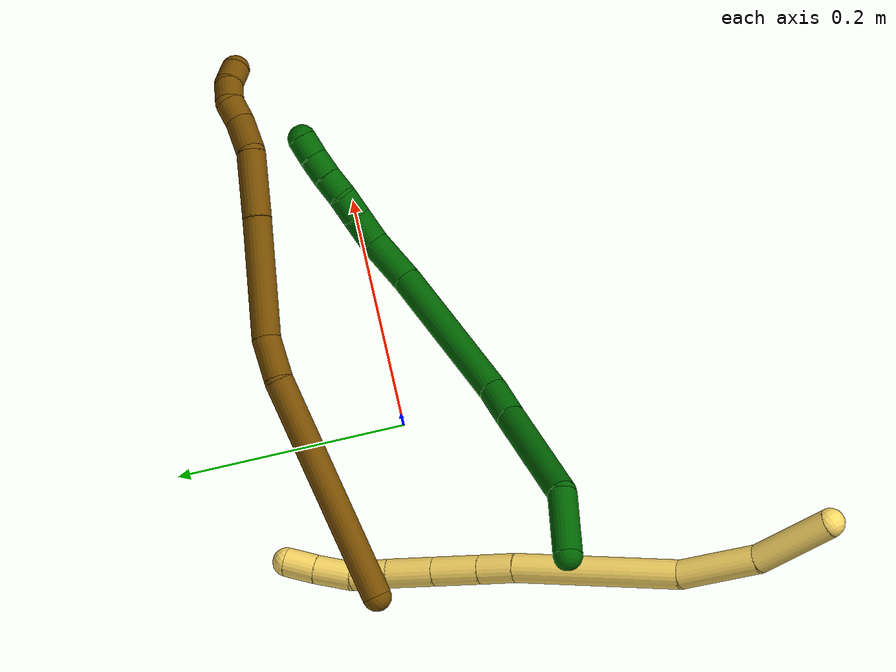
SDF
<sdf version="1.7">
 <world name="default">
  <model name="5">
   <static>0</static>
   <link name="5">
    <collision name="collision-cylinder-e_1_1_4">
     <pose>-0.008028 0.03285 -0.013775 -1.96787 -0.221677 0.331636</pose>
     <geometry><cylinder><radius>0.0125</radius><length>0.073029</length></cylinder></geometry>
     <surface>
      <friction><ode><mu>1.16</mu><mu2>1.16</mu2><slip1>0</slip1><slip2>0</slip2></ode></friction>
      <contact><ode><kp>1e+06</kp><kd>1</kd><max_vel>0</max_vel><min_depth>0.001</min_depth></ode></contact>
     </surface>
    </collision>
    <visual name="visual-cylinder-e_1_1_4">
     <pose>-0.008028 0.03285 -0.013775 -1.96787 -0.221677 0.331636</pose>
     <geometry><cylinder><radius>0.0125</radius><length>0.073029</length></cylinder></geometry>
     <material><ambient>1 0.858824 0.4 1</ambient></material>
    </visual>
    <collision name="collision-cylinder-e_2_4_5">
     <pose>-0.018952 0.094826 -0.047772 -2.17767 -0.081466 0.155506</pose>
     <geometry><cylinder><radius>0.0125</radius><length>0.071151</length></cylinder></geometry>
     <surface>
      <friction><ode><mu>1.16</mu><mu2>1.16</mu2><slip1>0</slip1><slip2>0</slip2></ode></friction>
      <contact><ode><kp>1e+06</kp><kd>1</kd><max_vel>0</max_vel><min_depth>0.001</min_depth></ode></contact>
     </surface>
    </collision>
    <visual name="visual-cylinder-e_2_4_5">
     <pose>-0.018952 0.094826 -0.047772 -2.17767 -0.081466 0.155506</pose>
     <geometry><cylinder><radius>0.0125</radius><length>0.071151</length></cylinder></geometry>
     <material><ambient>1 0.858824 0.4 1</ambient></material>
    </visual>
    <collision name="collision-cylinder-e_3_5_6">
     <pose>-0.018709 0.17489 -0.120969 -2.3758 0.042673 -0.105864</pose>
     <geometry><cylinder><radius>0.0125</radius><length>0.14712</length></cylinder></geometry>
     <surface>
      <friction><ode><mu>1.16</mu><mu2>1.16</mu2><slip1>0</slip1><slip2>0</slip2></ode></friction>
      <contact><ode><kp>1e+06</kp><kd>1</kd><max_vel>0</max_vel><min_depth>0.001</min_depth></ode></contact>
     </surface>
    </collision>
    <visual name="visual-cylinder-e_3_5_6">
     <pose>-0.018709 0.17489 -0.120969 -2.3758 0.042673 -0.105864</pose>
     <geometry><cylinder><radius>0.0125</radius><length>0.14712</length></cylinder></geometry>
     <material><ambient>1 0.858824 0.4 1</ambient></material>
    </visual>
    <collision name="collision-cylinder-e_4_6_7">
     <pose>-0.015591 0.237722 -0.184615 -2.302 -0.00126 0.002823</pose>
     <geometry><cylinder><radius>0.0125</radius><length>0.031956</length></cylinder></geometry>
     <surface>
      <friction><ode><mu>1.16</mu><mu2>1.16</mu2><slip1>0</slip1><slip2>0</slip2></ode></friction>
      <contact><ode><kp>1e+06</kp><kd>1</kd><max_vel>0</max_vel><min_depth>0.001</min_depth></ode></contact>
     </surface>
    </collision>
    <visual name="visual-cylinder-e_4_6_7">
     <pose>-0.015591 0.237722 -0.184615 -2.302 -0.00126 0.002823</pose>
     <geometry><cylinder><radius>0.0125</radius><length>0.031956</length></cylinder></geometry>
     <material><ambient>1 0.858824 0.4 1</ambient></material>
    </visual>
    <collision name="collision-cylinder-e_5_7_8">
     <pose>-0.015196 0.265155 -0.209189 -2.30073 0.019902 -0.044509</pose>
     <geometry><cylinder><radius>0.0125</radius><length>0.041713</length></cylinder></geometry>
     <surface>
      <friction><ode><mu>1.16</mu><mu2>1.16</mu2><slip1>0</slip1><slip2>0</slip2></ode></friction>
      <contact><ode><kp>1e+06</kp><kd>1</kd><max_vel>0</max_vel><min_depth>0.001</min_depth></ode></contact>
     </surface>
    </collision>
    <visual name="visual-cylinder-e_5_7_8">
     <pose>-0.015196 0.265155 -0.209189 -2.30073 0.019902 -0.044509</pose>
     <geometry><cylinder><radius>0.0125</radius><length>0.041713</length></cylinder></geometry>
     <material><ambient>1 0.858824 0.4 1</ambient></material>
    </visual>
    <collision name="collision-cylinder-e_6_8_9">
     <pose>-0.014299 0.296391 -0.237096 -2.29922 0.022904 -0.051115</pose>
     <geometry><cylinder><radius>0.0125</radius><length>0.042078</length></cylinder></geometry>
     <surface>
      <friction><ode><mu>1.16</mu><mu2>1.16</mu2><slip1>0</slip1><slip2>0</slip2></ode></friction>
      <contact><ode><kp>1e+06</kp><kd>1</kd><max_vel>0</max_vel><min_depth>0.001</min_depth></ode></contact>
     </surface>
    </collision>
    <visual name="visual-cylinder-e_6_8_9">
     <pose>-0.014299 0.296391 -0.237096 -2.29922 0.022904 -0.051115</pose>
     <geometry><cylinder><radius>0.0125</radius><length>0.042078</length></cylinder></geometry>
     <material><ambient>1 0.858824 0.4 1</ambient></material>
    </visual>
    <collision name="collision-cylinder-e_7_9_10">
     <pose>-0.012382 0.324798 -0.261441 -2.25381 0.087317 -0.183218</pose>
     <geometry><cylinder><radius>0.0125</radius><length>0.032902</length></cylinder></geometry>
     <surface>
      <friction><ode><mu>1.16</mu><mu2>1.16</mu2><slip1>0</slip1><slip2>0</slip2></ode></friction>
      <contact><ode><kp>1e+06</kp><kd>1</kd><max_vel>0</max_vel><min_depth>0.001</min_depth></ode></contact>
     </surface>
    </collision>
    <visual name="visual-cylinder-e_7_9_10">
     <pose>-0.012382 0.324798 -0.261441 -2.25381 0.087317 -0.183218</pose>
     <geometry><cylinder><radius>0.0125</radius><length>0.032902</length></cylinder></geometry>
     <material><ambient>1 0.858824 0.4 1</ambient></material>
    </visual>
    <collision name="collision-cylinder-e_8_10_11">
     <pose>-0.008293 0.347276 -0.284572 -2.48939 0.163502 -0.475405</pose>
     <geometry><cylinder><radius>0.0125</radius><length>0.032616</length></cylinder></geometry>
     <surface>
      <friction><ode><mu>1.16</mu><mu2>1.16</mu2><slip1>0</slip1><slip2>0</slip2></ode></friction>
      <contact><ode><kp>1e+06</kp><kd>1</kd><max_vel>0</max_vel><min_depth>0.001</min_depth></ode></contact>
     </surface>
    </collision>
    <visual name="visual-cylinder-e_8_10_11">
     <pose>-0.008293 0.347276 -0.284572 -2.48939 0.163502 -0.475405</pose>
     <geometry><cylinder><radius>0.0125</radius><length>0.032616</length></cylinder></geometry>
     <material><ambient>1 0.858824 0.4 1</ambient></material>
    </visual>
    <collision name="collision-cylinder-e_9_11_2">
     <pose>-0.002994 0.364576 -0.308514 -2.54755 0.194032 -0.615717</pose>
     <geometry><cylinder><radius>0.0125</radius><length>0.027435</length></cylinder></geometry>
     <surface>
      <friction><ode><mu>1.16</mu><mu2>1.16</mu2><slip1>0</slip1><slip2>0</slip2></ode></friction>
      <contact><ode><kp>1e+06</kp><kd>1</kd><max_vel>0</max_vel><min_depth>0.001</min_depth></ode></contact>
     </surface>
    </collision>
    <visual name="visual-cylinder-e_9_11_2">
     <pose>-0.002994 0.364576 -0.308514 -2.54755 0.194032 -0.615717</pose>
     <geometry><cylinder><radius>0.0125</radius><length>0.027435</length></cylinder></geometry>
     <material><ambient>1 0.858824 0.4 1</ambient></material>
    </visual>
    <collision name="collision-sphere-2">
     <pose>-0.000349 0.37211 -0.319669 0 -0 0</pose>
     <geometry><sphere><radius>0.0125</radius></sphere></geometry>
     <surface>
      <friction><ode><mu>1.16</mu><mu2>1.16</mu2><slip1>0</slip1><slip2>0</slip2></ode></friction>
      <contact><ode><kp>1e+06</kp><kd>1</kd><max_vel>0</max_vel><min_depth>0.001</min_depth></ode></contact>
     </surface>
    </collision>
    <visual name="visual-sphere-2">
     <pose>-0.000349 0.37211 -0.319669 0 -0 0</pose>
     <geometry><sphere><radius>0.0125</radius></sphere></geometry>
     <material><ambient>1 0.858824 0.4 1</ambient></material>
    </visual>
    <collision name="collision-sphere-11">
     <pose>-0.005639 0.357042 -0.29736 0 -0 0</pose>
     <geometry><sphere><radius>0.0125</radius></sphere></geometry>
     <surface>
      <friction><ode><mu>1.16</mu><mu2>1.16</mu2><slip1>0</slip1><slip2>0</slip2></ode></friction>
      <contact><ode><kp>1e+06</kp><kd>1</kd><max_vel>0</max_vel><min_depth>0.001</min_depth></ode></contact>
     </surface>
    </collision>
    <visual name="visual-sphere-11">
     <pose>-0.005639 0.357042 -0.29736 0 -0 0</pose>
     <geometry><sphere><radius>0.0125</radius></sphere></geometry>
     <material><ambient>1 0.858824 0.4 1</ambient></material>
    </visual>
    <collision name="collision-sphere-10">
     <pose>-0.010948 0.33751 -0.271784 0 -0 0</pose>
     <geometry><sphere><radius>0.0125</radius></sphere></geometry>
     <surface>
      <friction><ode><mu>1.16</mu><mu2>1.16</mu2><slip1>0</slip1><slip2>0</slip2></ode></friction>
      <contact><ode><kp>1e+06</kp><kd>1</kd><max_vel>0</max_vel><min_depth>0.001</min_depth></ode></contact>
     </surface>
    </collision>
    <visual name="visual-sphere-10">
     <pose>-0.010948 0.33751 -0.271784 0 -0 0</pose>
     <geometry><sphere><radius>0.0125</radius></sphere></geometry>
     <material><ambient>1 0.858824 0.4 1</ambient></material>
    </visual>
    <collision name="collision-sphere-9">
     <pose>-0.013817 0.312087 -0.251098 0 -0 0</pose>
     <geometry><sphere><radius>0.0125</radius></sphere></geometry>
     <surface>
      <friction><ode><mu>1.16</mu><mu2>1.16</mu2><slip1>0</slip1><slip2>0</slip2></ode></friction>
      <contact><ode><kp>1e+06</kp><kd>1</kd><max_vel>0</max_vel><min_depth>0.001</min_depth></ode></contact>
     </surface>
    </collision>
    <visual name="visual-sphere-9">
     <pose>-0.013817 0.312087 -0.251098 0 -0 0</pose>
     <geometry><sphere><radius>0.0125</radius></sphere></geometry>
     <material><ambient>1 0.858824 0.4 1</ambient></material>
    </visual>
    <collision name="collision-sphere-4">
     <pose>-0.016057 0.0657 -0.027551 0 -0 0</pose>
     <geometry><sphere><radius>0.0125</radius></sphere></geometry>
     <surface>
      <friction><ode><mu>1.16</mu><mu2>1.16</mu2><slip1>0</slip1><slip2>0</slip2></ode></friction>
      <contact><ode><kp>1e+06</kp><kd>1</kd><max_vel>0</max_vel><min_depth>0.001</min_depth></ode></contact>
     </surface>
    </collision>
    <visual name="visual-sphere-4">
     <pose>-0.016057 0.0657 -0.027551 0 -0 0</pose>
     <geometry><sphere><radius>0.0125</radius></sphere></geometry>
     <material><ambient>1 0.858824 0.4 1</ambient></material>
    </visual>
    <collision name="collision-sphere-1">
     <geometry><sphere><radius>0.0125</radius></sphere></geometry>
     <surface>
      <friction><ode><mu>1.16</mu><mu2>1.16</mu2><slip1>0</slip1><slip2>0</slip2></ode></friction>
      <contact><ode><kp>1e+06</kp><kd>1</kd><max_vel>0</max_vel><min_depth>0.001</min_depth></ode></contact>
     </surface>
    </collision>
    <visual name="visual-sphere-1">
     <geometry><sphere><radius>0.0125</radius></sphere></geometry>
     <material><ambient>1 0.858824 0.4 1</ambient></material>
    </visual>
    <collision name="collision-sphere-8">
     <pose>-0.014781 0.280695 -0.223094 0 -0 0</pose>
     <geometry><sphere><radius>0.0125</radius></sphere></geometry>
     <surface>
      <friction><ode><mu>1.16</mu><mu2>1.16</mu2><slip1>0</slip1><slip2>0</slip2></ode></friction>
      <contact><ode><kp>1e+06</kp><kd>1</kd><max_vel>0</max_vel><min_depth>0.001</min_depth></ode></contact>
     </surface>
    </collision>
    <visual name="visual-sphere-8">
     <pose>-0.014781 0.280695 -0.223094 0 -0 0</pose>
     <geometry><sphere><radius>0.0125</radius></sphere></geometry>
     <material><ambient>1 0.858824 0.4 1</ambient></material>
    </visual>
    <collision name="collision-sphere-5">
     <pose>-0.021847 0.123952 -0.067993 0 -0 0</pose>
     <geometry><sphere><radius>0.0125</radius></sphere></geometry>
     <surface>
      <friction><ode><mu>1.16</mu><mu2>1.16</mu2><slip1>0</slip1><slip2>0</slip2></ode></friction>
      <contact><ode><kp>1e+06</kp><kd>1</kd><max_vel>0</max_vel><min_depth>0.001</min_depth></ode></contact>
     </surface>
    </collision>
    <visual name="visual-sphere-5">
     <pose>-0.021847 0.123952 -0.067993 0 -0 0</pose>
     <geometry><sphere><radius>0.0125</radius></sphere></geometry>
     <material><ambient>1 0.858824 0.4 1</ambient></material>
    </visual>
    <collision name="collision-sphere-6">
     <pose>-0.015571 0.225829 -0.173946 0 -0 0</pose>
     <geometry><sphere><radius>0.0125</radius></sphere></geometry>
     <surface>
      <friction><ode><mu>1.16</mu><mu2>1.16</mu2><slip1>0</slip1><slip2>0</slip2></ode></friction>
      <contact><ode><kp>1e+06</kp><kd>1</kd><max_vel>0</max_vel><min_depth>0.001</min_depth></ode></contact>
     </surface>
    </collision>
    <visual name="visual-sphere-6">
     <pose>-0.015571 0.225829 -0.173946 0 -0 0</pose>
     <geometry><sphere><radius>0.0125</radius></sphere></geometry>
     <material><ambient>1 0.858824 0.4 1</ambient></material>
    </visual>
    <collision name="collision-sphere-7">
     <pose>-0.015611 0.249616 -0.195285 0 -0 0</pose>
     <geometry><sphere><radius>0.0125</radius></sphere></geometry>
     <surface>
      <friction><ode><mu>1.16</mu><mu2>1.16</mu2><slip1>0</slip1><slip2>0</slip2></ode></friction>
      <contact><ode><kp>1e+06</kp><kd>1</kd><max_vel>0</max_vel><min_depth>0.001</min_depth></ode></contact>
     </surface>
    </collision>
    <visual name="visual-sphere-7">
     <pose>-0.015611 0.249616 -0.195285 0 -0 0</pose>
     <geometry><sphere><radius>0.0125</radius></sphere></geometry>
     <material><ambient>1 0.858824 0.4 1</ambient></material>
    </visual>
    <inertial>
     <pose>-0.014362 0.19604 -0.146303 0 -0 0</pose>
     <mass>0.5</mass>
     <inertia>
      <ixx>0.000346</ixx>
      <ixy>0</ixy>
      <ixz>0</ixz>
      <iyy>-0.00023</iyy>
      <iyz>0</iyz>
      <izz>-0.000296</izz>
     </inertia>
    </inertial>
   </link>
   <pose>-0.16813 -0.324337 0.228222 -0.33734 -1.11833 0.83566</pose>
  </model>
  <model name="6">
   <static>0</static>
   <link name="6">
    <collision name="collision-cylinder-e_1_1_4">
     <pose>-0.00026 3e-06 -0.029575 -3.14148 -0.008802 3.11629</pose>
     <geometry><cylinder><radius>0.0125</radius><length>0.059151</length></cylinder></geometry>
     <surface>
      <friction><ode><mu>1.16</mu><mu2>1.16</mu2><slip1>0</slip1><slip2>0</slip2></ode></friction>
      <contact><ode><kp>1e+06</kp><kd>1</kd><max_vel>0</max_vel><min_depth>0.001</min_depth></ode></contact>
     </surface>
    </collision>
    <visual name="visual-cylinder-e_1_1_4">
     <pose>-0.00026 3e-06 -0.029575 -3.14148 -0.008802 3.11629</pose>
     <geometry><cylinder><radius>0.0125</radius><length>0.059151</length></cylinder></geometry>
     <material><ambient>0 0.392157 0.003922 1</ambient></material>
    </visual>
    <collision name="collision-cylinder-e_2_4_5">
     <pose>-0.009474 0.026631 -0.108475 -2.64665 -0.158386 0.608692</pose>
     <geometry><cylinder><radius>0.0125</radius><length>0.113526</length></cylinder></geometry>
     <surface>
      <friction><ode><mu>1.16</mu><mu2>1.16</mu2><slip1>0</slip1><slip2>0</slip2></ode></friction>
      <contact><ode><kp>1e+06</kp><kd>1</kd><max_vel>0</max_vel><min_depth>0.001</min_depth></ode></contact>
     </surface>
    </collision>
    <visual name="visual-cylinder-e_2_4_5">
     <pose>-0.009474 0.026631 -0.108475 -2.64665 -0.158386 0.608692</pose>
     <geometry><cylinder><radius>0.0125</radius><length>0.113526</length></cylinder></geometry>
     <material><ambient>0 0.392157 0.003922 1</ambient></material>
    </visual>
    <collision name="collision-cylinder-e_3_5_6">
     <pose>-0.017571 0.060288 -0.173488 -2.72013 0.049696 -0.231338</pose>
     <geometry><cylinder><radius>0.0125</radius><length>0.034427</length></cylinder></geometry>
     <surface>
      <friction><ode><mu>1.16</mu><mu2>1.16</mu2><slip1>0</slip1><slip2>0</slip2></ode></friction>
      <contact><ode><kp>1e+06</kp><kd>1</kd><max_vel>0</max_vel><min_depth>0.001</min_depth></ode></contact>
     </surface>
    </collision>
    <visual name="visual-cylinder-e_3_5_6">
     <pose>-0.017571 0.060288 -0.173488 -2.72013 0.049696 -0.231338</pose>
     <geometry><cylinder><radius>0.0125</radius><length>0.034427</length></cylinder></geometry>
     <material><ambient>0 0.392157 0.003922 1</ambient></material>
    </visual>
    <collision name="collision-cylinder-e_4_6_7">
     <pose>-0.003067 0.097309 -0.24897 -2.67673 0.201281 -0.806457</pose>
     <geometry><cylinder><radius>0.0125</radius><length>0.13654</length></cylinder></geometry>
     <surface>
      <friction><ode><mu>1.16</mu><mu2>1.16</mu2><slip1>0</slip1><slip2>0</slip2></ode></friction>
      <contact><ode><kp>1e+06</kp><kd>1</kd><max_vel>0</max_vel><min_depth>0.001</min_depth></ode></contact>
     </surface>
    </collision>
    <visual name="visual-cylinder-e_4_6_7">
     <pose>-0.003067 0.097309 -0.24897 -2.67673 0.201281 -0.806457</pose>
     <geometry><cylinder><radius>0.0125</radius><length>0.13654</length></cylinder></geometry>
     <material><ambient>0 0.392157 0.003922 1</ambient></material>
    </visual>
    <collision name="collision-cylinder-e_5_7_8">
     <pose>0.019015 0.13703 -0.327487 -2.6622 0.380178 -1.33389</pose>
     <geometry><cylinder><radius>0.0125</radius><length>0.045452</length></cylinder></geometry>
     <surface>
      <friction><ode><mu>1.16</mu><mu2>1.16</mu2><slip1>0</slip1><slip2>0</slip2></ode></friction>
      <contact><ode><kp>1e+06</kp><kd>1</kd><max_vel>0</max_vel><min_depth>0.001</min_depth></ode></contact>
     </surface>
    </collision>
    <visual name="visual-cylinder-e_5_7_8">
     <pose>0.019015 0.13703 -0.327487 -2.6622 0.380178 -1.33389</pose>
     <geometry><cylinder><radius>0.0125</radius><length>0.045452</length></cylinder></geometry>
     <material><ambient>0 0.392157 0.003922 1</ambient></material>
    </visual>
    <collision name="collision-cylinder-e_6_8_9">
     <pose>0.037383 0.148692 -0.355535 -2.93764 0.806674 -2.67087</pose>
     <geometry><cylinder><radius>0.0125</radius><length>0.027522</length></cylinder></geometry>
     <surface>
      <friction><ode><mu>1.16</mu><mu2>1.16</mu2><slip1>0</slip1><slip2>0</slip2></ode></friction>
      <contact><ode><kp>1e+06</kp><kd>1</kd><max_vel>0</max_vel><min_depth>0.001</min_depth></ode></contact>
     </surface>
    </collision>
    <visual name="visual-cylinder-e_6_8_9">
     <pose>0.037383 0.148692 -0.355535 -2.93764 0.806674 -2.67087</pose>
     <geometry><cylinder><radius>0.0125</radius><length>0.027522</length></cylinder></geometry>
     <material><ambient>0 0.392157 0.003922 1</ambient></material>
    </visual>
    <collision name="collision-cylinder-e_7_9_10">
     <pose>0.055209 0.15215 -0.372283 -2.93842 0.805487 -2.67188</pose>
     <geometry><cylinder><radius>0.0125</radius><length>0.021883</length></cylinder></geometry>
     <surface>
      <friction><ode><mu>1.16</mu><mu2>1.16</mu2><slip1>0</slip1><slip2>0</slip2></ode></friction>
      <contact><ode><kp>1e+06</kp><kd>1</kd><max_vel>0</max_vel><min_depth>0.001</min_depth></ode></contact>
     </surface>
    </collision>
    <visual name="visual-cylinder-e_7_9_10">
     <pose>0.055209 0.15215 -0.372283 -2.93842 0.805487 -2.67188</pose>
     <geometry><cylinder><radius>0.0125</radius><length>0.021883</length></cylinder></geometry>
     <material><ambient>0 0.392157 0.003922 1</ambient></material>
    </visual>
    <collision name="collision-cylinder-e_8_10_11">
     <pose>0.06867 0.156954 -0.387793 -2.75682 0.568246 -1.96505</pose>
     <geometry><cylinder><radius>0.0125</radius><length>0.0207</length></cylinder></geometry>
     <surface>
      <friction><ode><mu>1.16</mu><mu2>1.16</mu2><slip1>0</slip1><slip2>0</slip2></ode></friction>
      <contact><ode><kp>1e+06</kp><kd>1</kd><max_vel>0</max_vel><min_depth>0.001</min_depth></ode></contact>
     </surface>
    </collision>
    <visual name="visual-cylinder-e_8_10_11">
     <pose>0.06867 0.156954 -0.387793 -2.75682 0.568246 -1.96505</pose>
     <geometry><cylinder><radius>0.0125</radius><length>0.0207</length></cylinder></geometry>
     <material><ambient>0 0.392157 0.003922 1</ambient></material>
    </visual>
    <collision name="collision-cylinder-e_9_11_12">
     <pose>0.0793 0.163126 -0.404488 -2.81696 0.508189 -2.01645</pose>
     <geometry><cylinder><radius>0.0125</radius><length>0.020797</length></cylinder></geometry>
     <surface>
      <friction><ode><mu>1.16</mu><mu2>1.16</mu2><slip1>0</slip1><slip2>0</slip2></ode></friction>
      <contact><ode><kp>1e+06</kp><kd>1</kd><max_vel>0</max_vel><min_depth>0.001</min_depth></ode></contact>
     </surface>
    </collision>
    <visual name="visual-cylinder-e_9_11_12">
     <pose>0.0793 0.163126 -0.404488 -2.81696 0.508189 -2.01645</pose>
     <geometry><cylinder><radius>0.0125</radius><length>0.020797</length></cylinder></geometry>
     <material><ambient>0 0.392157 0.003922 1</ambient></material>
    </visual>
    <collision name="collision-cylinder-e_10_12_2">
     <pose>0.089086 0.168373 -0.421593 -2.87174 0.492286 -2.15083</pose>
     <geometry><cylinder><radius>0.0125</radius><length>0.020002</length></cylinder></geometry>
     <surface>
      <friction><ode><mu>1.16</mu><mu2>1.16</mu2><slip1>0</slip1><slip2>0</slip2></ode></friction>
      <contact><ode><kp>1e+06</kp><kd>1</kd><max_vel>0</max_vel><min_depth>0.001</min_depth></ode></contact>
     </surface>
    </collision>
    <visual name="visual-cylinder-e_10_12_2">
     <pose>0.089086 0.168373 -0.421593 -2.87174 0.492286 -2.15083</pose>
     <geometry><cylinder><radius>0.0125</radius><length>0.020002</length></cylinder></geometry>
     <material><ambient>0 0.392157 0.003922 1</ambient></material>
    </visual>
    <collision name="collision-sphere-2">
     <pose>0.093813 0.170722 -0.430087 0 -0 0</pose>
     <geometry><sphere><radius>0.0125</radius></sphere></geometry>
     <surface>
      <friction><ode><mu>1.16</mu><mu2>1.16</mu2><slip1>0</slip1><slip2>0</slip2></ode></friction>
      <contact><ode><kp>1e+06</kp><kd>1</kd><max_vel>0</max_vel><min_depth>0.001</min_depth></ode></contact>
     </surface>
    </collision>
    <visual name="visual-sphere-2">
     <pose>0.093813 0.170722 -0.430087 0 -0 0</pose>
     <geometry><sphere><radius>0.0125</radius></sphere></geometry>
     <material><ambient>0 0.392157 0.003922 1</ambient></material>
    </visual>
    <collision name="collision-sphere-12">
     <pose>0.08436 0.166023 -0.413098 0 -0 0</pose>
     <geometry><sphere><radius>0.0125</radius></sphere></geometry>
     <surface>
      <friction><ode><mu>1.16</mu><mu2>1.16</mu2><slip1>0</slip1><slip2>0</slip2></ode></friction>
      <contact><ode><kp>1e+06</kp><kd>1</kd><max_vel>0</max_vel><min_depth>0.001</min_depth></ode></contact>
     </surface>
    </collision>
    <visual name="visual-sphere-12">
     <pose>0.08436 0.166023 -0.413098 0 -0 0</pose>
     <geometry><sphere><radius>0.0125</radius></sphere></geometry>
     <material><ambient>0 0.392157 0.003922 1</ambient></material>
    </visual>
    <collision name="collision-sphere-11">
     <pose>0.07424 0.160228 -0.395878 0 -0 0</pose>
     <geometry><sphere><radius>0.0125</radius></sphere></geometry>
     <surface>
      <friction><ode><mu>1.16</mu><mu2>1.16</mu2><slip1>0</slip1><slip2>0</slip2></ode></friction>
      <contact><ode><kp>1e+06</kp><kd>1</kd><max_vel>0</max_vel><min_depth>0.001</min_depth></ode></contact>
     </surface>
    </collision>
    <visual name="visual-sphere-11">
     <pose>0.07424 0.160228 -0.395878 0 -0 0</pose>
     <geometry><sphere><radius>0.0125</radius></sphere></geometry>
     <material><ambient>0 0.392157 0.003922 1</ambient></material>
    </visual>
    <collision name="collision-sphere-10">
     <pose>0.0631 0.15368 -0.379707 0 -0 0</pose>
     <geometry><sphere><radius>0.0125</radius></sphere></geometry>
     <surface>
      <friction><ode><mu>1.16</mu><mu2>1.16</mu2><slip1>0</slip1><slip2>0</slip2></ode></friction>
      <contact><ode><kp>1e+06</kp><kd>1</kd><max_vel>0</max_vel><min_depth>0.001</min_depth></ode></contact>
     </surface>
    </collision>
    <visual name="visual-sphere-10">
     <pose>0.0631 0.15368 -0.379707 0 -0 0</pose>
     <geometry><sphere><radius>0.0125</radius></sphere></geometry>
     <material><ambient>0 0.392157 0.003922 1</ambient></material>
    </visual>
    <collision name="collision-sphere-9">
     <pose>0.047318 0.150621 -0.364859 0 -0 0</pose>
     <geometry><sphere><radius>0.0125</radius></sphere></geometry>
     <surface>
      <friction><ode><mu>1.16</mu><mu2>1.16</mu2><slip1>0</slip1><slip2>0</slip2></ode></friction>
      <contact><ode><kp>1e+06</kp><kd>1</kd><max_vel>0</max_vel><min_depth>0.001</min_depth></ode></contact>
     </surface>
    </collision>
    <visual name="visual-sphere-9">
     <pose>0.047318 0.150621 -0.364859 0 -0 0</pose>
     <geometry><sphere><radius>0.0125</radius></sphere></geometry>
     <material><ambient>0 0.392157 0.003922 1</ambient></material>
    </visual>
    <collision name="collision-sphere-4">
     <pose>-0.000521 7e-06 -0.059149 0 -0 0</pose>
     <geometry><sphere><radius>0.0125</radius></sphere></geometry>
     <surface>
      <friction><ode><mu>1.16</mu><mu2>1.16</mu2><slip1>0</slip1><slip2>0</slip2></ode></friction>
      <contact><ode><kp>1e+06</kp><kd>1</kd><max_vel>0</max_vel><min_depth>0.001</min_depth></ode></contact>
     </surface>
    </collision>
    <visual name="visual-sphere-4">
     <pose>-0.000521 7e-06 -0.059149 0 -0 0</pose>
     <geometry><sphere><radius>0.0125</radius></sphere></geometry>
     <material><ambient>0 0.392157 0.003922 1</ambient></material>
    </visual>
    <collision name="collision-sphere-1">
     <geometry><sphere><radius>0.0125</radius></sphere></geometry>
     <surface>
      <friction><ode><mu>1.16</mu><mu2>1.16</mu2><slip1>0</slip1><slip2>0</slip2></ode></friction>
      <contact><ode><kp>1e+06</kp><kd>1</kd><max_vel>0</max_vel><min_depth>0.001</min_depth></ode></contact>
     </surface>
    </collision>
    <visual name="visual-sphere-1">
     <geometry><sphere><radius>0.0125</radius></sphere></geometry>
     <material><ambient>0 0.392157 0.003922 1</ambient></material>
    </visual>
    <collision name="collision-sphere-8">
     <pose>0.027448 0.146764 -0.346211 0 -0 0</pose>
     <geometry><sphere><radius>0.0125</radius></sphere></geometry>
     <surface>
      <friction><ode><mu>1.16</mu><mu2>1.16</mu2><slip1>0</slip1><slip2>0</slip2></ode></friction>
      <contact><ode><kp>1e+06</kp><kd>1</kd><max_vel>0</max_vel><min_depth>0.001</min_depth></ode></contact>
     </surface>
    </collision>
    <visual name="visual-sphere-8">
     <pose>0.027448 0.146764 -0.346211 0 -0 0</pose>
     <geometry><sphere><radius>0.0125</radius></sphere></geometry>
     <material><ambient>0 0.392157 0.003922 1</ambient></material>
    </visual>
    <collision name="collision-sphere-5">
     <pose>-0.018426 0.053254 -0.1578 0 -0 0</pose>
     <geometry><sphere><radius>0.0125</radius></sphere></geometry>
     <surface>
      <friction><ode><mu>1.16</mu><mu2>1.16</mu2><slip1>0</slip1><slip2>0</slip2></ode></friction>
      <contact><ode><kp>1e+06</kp><kd>1</kd><max_vel>0</max_vel><min_depth>0.001</min_depth></ode></contact>
     </surface>
    </collision>
    <visual name="visual-sphere-5">
     <pose>-0.018426 0.053254 -0.1578 0 -0 0</pose>
     <geometry><sphere><radius>0.0125</radius></sphere></geometry>
     <material><ambient>0 0.392157 0.003922 1</ambient></material>
    </visual>
    <collision name="collision-sphere-6">
     <pose>-0.016716 0.067321 -0.189176 0 -0 0</pose>
     <geometry><sphere><radius>0.0125</radius></sphere></geometry>
     <surface>
      <friction><ode><mu>1.16</mu><mu2>1.16</mu2><slip1>0</slip1><slip2>0</slip2></ode></friction>
      <contact><ode><kp>1e+06</kp><kd>1</kd><max_vel>0</max_vel><min_depth>0.001</min_depth></ode></contact>
     </surface>
    </collision>
    <visual name="visual-sphere-6">
     <pose>-0.016716 0.067321 -0.189176 0 -0 0</pose>
     <geometry><sphere><radius>0.0125</radius></sphere></geometry>
     <material><ambient>0 0.392157 0.003922 1</ambient></material>
    </visual>
    <collision name="collision-sphere-7">
     <pose>0.010581 0.127296 -0.308763 0 -0 0</pose>
     <geometry><sphere><radius>0.0125</radius></sphere></geometry>
     <surface>
      <friction><ode><mu>1.16</mu><mu2>1.16</mu2><slip1>0</slip1><slip2>0</slip2></ode></friction>
      <contact><ode><kp>1e+06</kp><kd>1</kd><max_vel>0</max_vel><min_depth>0.001</min_depth></ode></contact>
     </surface>
    </collision>
    <visual name="visual-sphere-7">
     <pose>0.010581 0.127296 -0.308763 0 -0 0</pose>
     <geometry><sphere><radius>0.0125</radius></sphere></geometry>
     <material><ambient>0 0.392157 0.003922 1</ambient></material>
    </visual>
    <inertial>
     <pose>0.011678 0.08409 -0.22344 0 -0 0</pose>
     <mass>0.5</mass>
     <inertia>
      <ixx>0.000143</ixx>
      <ixy>0</ixy>
      <ixz>0</ixz>
      <iyy>-0.000268</iyy>
      <iyz>0</iyz>
      <izz>-0.000229</izz>
     </inertia>
    </inertial>
   </link>
   <pose>-0.14589 -0.108465 0.210157 -0.822585 -0.877728 0.811462</pose>
  </model>
  <model name="12">
   <static>0</static>
   <link name="12">
    <collision name="collision-cylinder-e_1_1_4">
     <pose>0.061047 -0.015701 -0.078752 2.9448 0.650005 2.57162</pose>
     <geometry><cylinder><radius>0.0125</radius><length>0.201743</length></cylinder></geometry>
     <surface>
      <friction><ode><mu>1.16</mu><mu2>1.16</mu2><slip1>0</slip1><slip2>0</slip2></ode></friction>
      <contact><ode><kp>1e+06</kp><kd>1</kd><max_vel>0</max_vel><min_depth>0.001</min_depth></ode></contact>
     </surface>
    </collision>
    <visual name="visual-cylinder-e_1_1_4">
     <pose>0.061047 -0.015701 -0.078752 2.9448 0.650005 2.57162</pose>
     <geometry><cylinder><radius>0.0125</radius><length>0.201743</length></cylinder></geometry>
     <material><ambient>0.466667 0.301961 0 1</ambient></material>
    </visual>
    <collision name="collision-cylinder-e_2_4_5">
     <pose>0.136902 -0.036599 -0.16888 2.71302 0.86946 2.26507</pose>
     <geometry><cylinder><radius>0.0125</radius><length>0.038768</length></cylinder></geometry>
     <surface>
      <friction><ode><mu>1.16</mu><mu2>1.16</mu2><slip1>0</slip1><slip2>0</slip2></ode></friction>
      <contact><ode><kp>1e+06</kp><kd>1</kd><max_vel>0</max_vel><min_depth>0.001</min_depth></ode></contact>
     </surface>
    </collision>
    <visual name="visual-cylinder-e_2_4_5">
     <pose>0.136902 -0.036599 -0.16888 2.71302 0.86946 2.26507</pose>
     <geometry><cylinder><radius>0.0125</radius><length>0.038768</length></cylinder></geometry>
     <material><ambient>0.466667 0.301961 0 1</ambient></material>
    </visual>
    <collision name="collision-cylinder-e_3_5_6">
     <pose>0.195962 -0.043556 -0.208776 3.07999 0.997435 3.02856</pose>
     <geometry><cylinder><radius>0.0125</radius><length>0.105349</length></cylinder></geometry>
     <surface>
      <friction><ode><mu>1.16</mu><mu2>1.16</mu2><slip1>0</slip1><slip2>0</slip2></ode></friction>
      <contact><ode><kp>1e+06</kp><kd>1</kd><max_vel>0</max_vel><min_depth>0.001</min_depth></ode></contact>
     </surface>
    </collision>
    <visual name="visual-cylinder-e_3_5_6">
     <pose>0.195962 -0.043556 -0.208776 3.07999 0.997435 3.02856</pose>
     <geometry><cylinder><radius>0.0125</radius><length>0.105349</length></cylinder></geometry>
     <material><ambient>0.466667 0.301961 0 1</ambient></material>
    </visual>
    <collision name="collision-cylinder-e_4_6_7">
     <pose>0.265218 -0.047669 -0.252838 2.99129 1.00956 2.87072</pose>
     <geometry><cylinder><radius>0.0125</radius><length>0.059072</length></cylinder></geometry>
     <surface>
      <friction><ode><mu>1.16</mu><mu2>1.16</mu2><slip1>0</slip1><slip2>0</slip2></ode></friction>
      <contact><ode><kp>1e+06</kp><kd>1</kd><max_vel>0</max_vel><min_depth>0.001</min_depth></ode></contact>
     </surface>
    </collision>
    <visual name="visual-cylinder-e_4_6_7">
     <pose>0.265218 -0.047669 -0.252838 2.99129 1.00956 2.87072</pose>
     <geometry><cylinder><radius>0.0125</radius><length>0.059072</length></cylinder></geometry>
     <material><ambient>0.466667 0.301961 0 1</ambient></material>
    </visual>
    <collision name="collision-cylinder-e_5_7_8">
     <pose>0.303403 -0.058187 -0.275707 2.30208 0.876696 1.61993</pose>
     <geometry><cylinder><radius>0.0125</radius><length>0.034295</length></cylinder></geometry>
     <surface>
      <friction><ode><mu>1.16</mu><mu2>1.16</mu2><slip1>0</slip1><slip2>0</slip2></ode></friction>
      <contact><ode><kp>1e+06</kp><kd>1</kd><max_vel>0</max_vel><min_depth>0.001</min_depth></ode></contact>
     </surface>
    </collision>
    <visual name="visual-cylinder-e_5_7_8">
     <pose>0.303403 -0.058187 -0.275707 2.30208 0.876696 1.61993</pose>
     <geometry><cylinder><radius>0.0125</radius><length>0.034295</length></cylinder></geometry>
     <material><ambient>0.466667 0.301961 0 1</ambient></material>
    </visual>
    <collision name="collision-cylinder-e_6_8_9">
     <pose>0.323147 -0.070244 -0.289876 2.62455 0.694943 1.88023</pose>
     <geometry><cylinder><radius>0.0125</radius><length>0.020502</length></cylinder></geometry>
     <surface>
      <friction><ode><mu>1.16</mu><mu2>1.16</mu2><slip1>0</slip1><slip2>0</slip2></ode></friction>
      <contact><ode><kp>1e+06</kp><kd>1</kd><max_vel>0</max_vel><min_depth>0.001</min_depth></ode></contact>
     </surface>
    </collision>
    <visual name="visual-cylinder-e_6_8_9">
     <pose>0.323147 -0.070244 -0.289876 2.62455 0.694943 1.88023</pose>
     <geometry><cylinder><radius>0.0125</radius><length>0.020502</length></cylinder></geometry>
     <material><ambient>0.466667 0.301961 0 1</ambient></material>
    </visual>
    <collision name="collision-cylinder-e_7_9_10">
     <pose>0.338684 -0.07792 -0.299444 2.19455 1.09163 1.74</pose>
     <geometry><cylinder><radius>0.0125</radius><length>0.020223</length></cylinder></geometry>
     <surface>
      <friction><ode><mu>1.16</mu><mu2>1.16</mu2><slip1>0</slip1><slip2>0</slip2></ode></friction>
      <contact><ode><kp>1e+06</kp><kd>1</kd><max_vel>0</max_vel><min_depth>0.001</min_depth></ode></contact>
     </surface>
    </collision>
    <visual name="visual-cylinder-e_7_9_10">
     <pose>0.338684 -0.07792 -0.299444 2.19455 1.09163 1.74</pose>
     <geometry><cylinder><radius>0.0125</radius><length>0.020223</length></cylinder></geometry>
     <material><ambient>0.466667 0.301961 0 1</ambient></material>
    </visual>
    <collision name="collision-cylinder-e_8_10_2">
     <pose>0.357328 -0.08425 -0.301489 1.31076 1.30478 1.06205</pose>
     <geometry><cylinder><radius>0.0125</radius><length>0.020049</length></cylinder></geometry>
     <surface>
      <friction><ode><mu>1.16</mu><mu2>1.16</mu2><slip1>0</slip1><slip2>0</slip2></ode></friction>
      <contact><ode><kp>1e+06</kp><kd>1</kd><max_vel>0</max_vel><min_depth>0.001</min_depth></ode></contact>
     </surface>
    </collision>
    <visual name="visual-cylinder-e_8_10_2">
     <pose>0.357328 -0.08425 -0.301489 1.31076 1.30478 1.06205</pose>
     <geometry><cylinder><radius>0.0125</radius><length>0.020049</length></cylinder></geometry>
     <material><ambient>0.466667 0.301961 0 1</ambient></material>
    </visual>
    <collision name="collision-sphere-2">
     <pose>0.367 -0.086797 -0.300811 0 -0 0</pose>
     <geometry><sphere><radius>0.0125</radius></sphere></geometry>
     <surface>
      <friction><ode><mu>1.16</mu><mu2>1.16</mu2><slip1>0</slip1><slip2>0</slip2></ode></friction>
      <contact><ode><kp>1e+06</kp><kd>1</kd><max_vel>0</max_vel><min_depth>0.001</min_depth></ode></contact>
     </surface>
    </collision>
    <visual name="visual-sphere-2">
     <pose>0.367 -0.086797 -0.300811 0 -0 0</pose>
     <geometry><sphere><radius>0.0125</radius></sphere></geometry>
     <material><ambient>0.466667 0.301961 0 1</ambient></material>
    </visual>
    <collision name="collision-sphere-10">
     <pose>0.347656 -0.081704 -0.302167 0 -0 0</pose>
     <geometry><sphere><radius>0.0125</radius></sphere></geometry>
     <surface>
      <friction><ode><mu>1.16</mu><mu2>1.16</mu2><slip1>0</slip1><slip2>0</slip2></ode></friction>
      <contact><ode><kp>1e+06</kp><kd>1</kd><max_vel>0</max_vel><min_depth>0.001</min_depth></ode></contact>
     </surface>
    </collision>
    <visual name="visual-sphere-10">
     <pose>0.347656 -0.081704 -0.302167 0 -0 0</pose>
     <geometry><sphere><radius>0.0125</radius></sphere></geometry>
     <material><ambient>0.466667 0.301961 0 1</ambient></material>
    </visual>
    <collision name="collision-sphere-9">
     <pose>0.329711 -0.074136 -0.296721 0 -0 0</pose>
     <geometry><sphere><radius>0.0125</radius></sphere></geometry>
     <surface>
      <friction><ode><mu>1.16</mu><mu2>1.16</mu2><slip1>0</slip1><slip2>0</slip2></ode></friction>
      <contact><ode><kp>1e+06</kp><kd>1</kd><max_vel>0</max_vel><min_depth>0.001</min_depth></ode></contact>
     </surface>
    </collision>
    <visual name="visual-sphere-9">
     <pose>0.329711 -0.074136 -0.296721 0 -0 0</pose>
     <geometry><sphere><radius>0.0125</radius></sphere></geometry>
     <material><ambient>0.466667 0.301961 0 1</ambient></material>
    </visual>
    <collision name="collision-sphere-4">
     <pose>0.122093 -0.031402 -0.157504 0 -0 0</pose>
     <geometry><sphere><radius>0.0125</radius></sphere></geometry>
     <surface>
      <friction><ode><mu>1.16</mu><mu2>1.16</mu2><slip1>0</slip1><slip2>0</slip2></ode></friction>
      <contact><ode><kp>1e+06</kp><kd>1</kd><max_vel>0</max_vel><min_depth>0.001</min_depth></ode></contact>
     </surface>
    </collision>
    <visual name="visual-sphere-4">
     <pose>0.122093 -0.031402 -0.157504 0 -0 0</pose>
     <geometry><sphere><radius>0.0125</radius></sphere></geometry>
     <material><ambient>0.466667 0.301961 0 1</ambient></material>
    </visual>
    <collision name="collision-sphere-1">
     <geometry><sphere><radius>0.0125</radius></sphere></geometry>
     <surface>
      <friction><ode><mu>1.16</mu><mu2>1.16</mu2><slip1>0</slip1><slip2>0</slip2></ode></friction>
      <contact><ode><kp>1e+06</kp><kd>1</kd><max_vel>0</max_vel><min_depth>0.001</min_depth></ode></contact>
     </surface>
    </collision>
    <visual name="visual-sphere-1">
     <geometry><sphere><radius>0.0125</radius></sphere></geometry>
     <material><ambient>0.466667 0.301961 0 1</ambient></material>
    </visual>
    <collision name="collision-sphere-8">
     <pose>0.316583 -0.066352 -0.283032 0 -0 0</pose>
     <geometry><sphere><radius>0.0125</radius></sphere></geometry>
     <surface>
      <friction><ode><mu>1.16</mu><mu2>1.16</mu2><slip1>0</slip1><slip2>0</slip2></ode></friction>
      <contact><ode><kp>1e+06</kp><kd>1</kd><max_vel>0</max_vel><min_depth>0.001</min_depth></ode></contact>
     </surface>
    </collision>
    <visual name="visual-sphere-8">
     <pose>0.316583 -0.066352 -0.283032 0 -0 0</pose>
     <geometry><sphere><radius>0.0125</radius></sphere></geometry>
     <material><ambient>0.466667 0.301961 0 1</ambient></material>
    </visual>
    <collision name="collision-sphere-5">
     <pose>0.151711 -0.041797 -0.180257 0 -0 0</pose>
     <geometry><sphere><radius>0.0125</radius></sphere></geometry>
     <surface>
      <friction><ode><mu>1.16</mu><mu2>1.16</mu2><slip1>0</slip1><slip2>0</slip2></ode></friction>
      <contact><ode><kp>1e+06</kp><kd>1</kd><max_vel>0</max_vel><min_depth>0.001</min_depth></ode></contact>
     </surface>
    </collision>
    <visual name="visual-sphere-5">
     <pose>0.151711 -0.041797 -0.180257 0 -0 0</pose>
     <geometry><sphere><radius>0.0125</radius></sphere></geometry>
     <material><ambient>0.466667 0.301961 0 1</ambient></material>
    </visual>
    <collision name="collision-sphere-6">
     <pose>0.240213 -0.045315 -0.237296 0 -0 0</pose>
     <geometry><sphere><radius>0.0125</radius></sphere></geometry>
     <surface>
      <friction><ode><mu>1.16</mu><mu2>1.16</mu2><slip1>0</slip1><slip2>0</slip2></ode></friction>
      <contact><ode><kp>1e+06</kp><kd>1</kd><max_vel>0</max_vel><min_depth>0.001</min_depth></ode></contact>
     </surface>
    </collision>
    <visual name="visual-sphere-6">
     <pose>0.240213 -0.045315 -0.237296 0 -0 0</pose>
     <geometry><sphere><radius>0.0125</radius></sphere></geometry>
     <material><ambient>0.466667 0.301961 0 1</ambient></material>
    </visual>
    <collision name="collision-sphere-7">
     <pose>0.290223 -0.050023 -0.268381 0 -0 0</pose>
     <geometry><sphere><radius>0.0125</radius></sphere></geometry>
     <surface>
      <friction><ode><mu>1.16</mu><mu2>1.16</mu2><slip1>0</slip1><slip2>0</slip2></ode></friction>
      <contact><ode><kp>1e+06</kp><kd>1</kd><max_vel>0</max_vel><min_depth>0.001</min_depth></ode></contact>
     </surface>
    </collision>
    <visual name="visual-sphere-7">
     <pose>0.290223 -0.050023 -0.268381 0 -0 0</pose>
     <geometry><sphere><radius>0.0125</radius></sphere></geometry>
     <material><ambient>0.466667 0.301961 0 1</ambient></material>
    </visual>
    <inertial>
     <pose>0.169955 -0.037383 -0.173726 0 -0 0</pose>
     <mass>0.5</mass>
     <inertia>
      <ixx>-0.000188</ixx>
      <ixy>0</ixy>
      <ixz>0</ixz>
      <iyy>0.001056</iyy>
      <iyz>0</iyz>
      <izz>-0.000438</izz>
     </inertia>
    </inertial>
   </link>
   <pose>-0.141406 0.054211 0.097614 2.08752 0.426064 -0.654483</pose>
  </model>
 </world>
</sdf>
